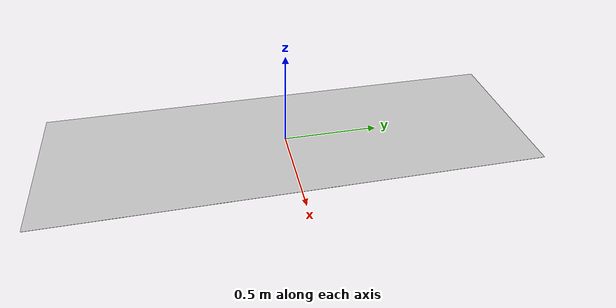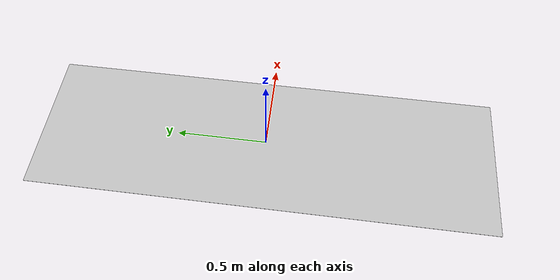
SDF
<?xml version='1.0'?>
<sdf version='1.6'>
	<model name='syy_plaque'>
		<link name='main'>
			<pose frame=''>0 0 0 0 0 0 </pose>
			<visual name='main_Visual'>
				<geometry>
					<box>
						<size>0.812 2.541 0.001</size>
					</box>
				</geometry>
				<material>
					<script>
						<uri>model://syy_plaque/materials/scripts</uri>
						<uri>model://syy_plaque/materials/textures</uri>
						<name>syy_plaque</name>
					</script>
				</material>
			</visual>
		</link>
		<static>1</static>
	</model>
</sdf>
